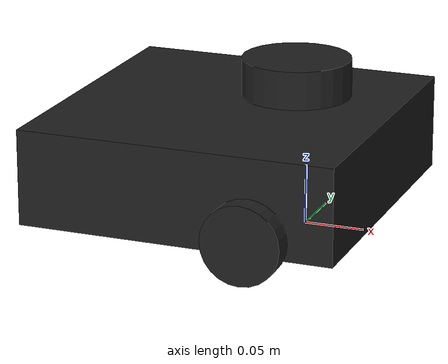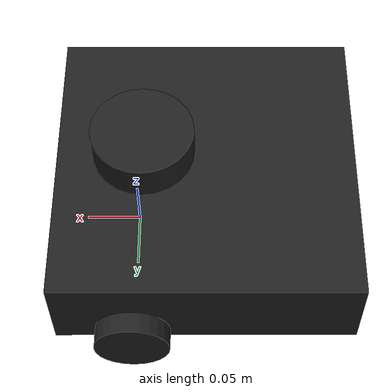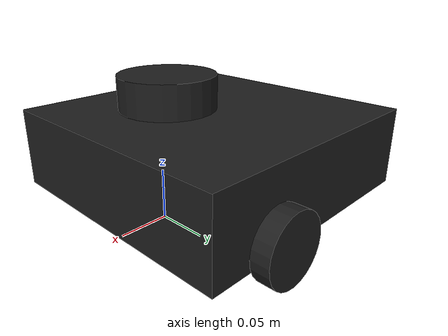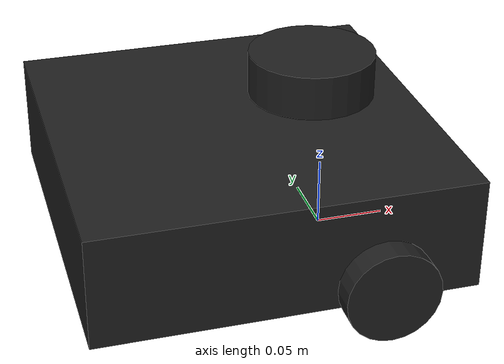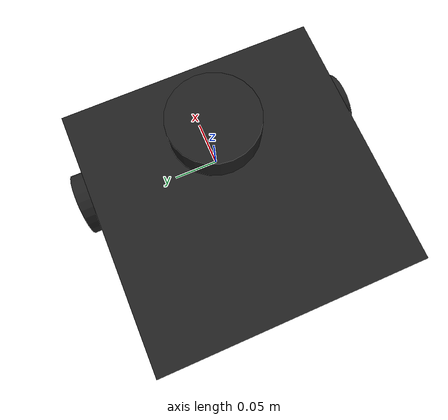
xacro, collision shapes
<?xml version="1.0" ?>
<robot name="turtlebot3_waffle_for_open_manipulator" xmlns:xacro="http://ros.org/wiki/xacro">
  <xacro:arg name="use_robot_name"    default="robot1"/>
  <xacro:property name="use_robot_name" value="$(arg use_robot_name)" />
  <xacro:include filename="$(find omtb_description)/turtlebot3_description/urdf/common_properties.xacro"/>
  <xacro:include filename="$(find omtb_description)/turtlebot3_description/urdf/turtlebot3_waffle.gazebo.xacro"/>

  <xacro:property name="r200_cam_rgb_px" value="0.005"/>
  <xacro:property name="r200_cam_rgb_py" value="0.018"/>
  <xacro:property name="r200_cam_rgb_pz" value="0.013"/>
  <xacro:property name="r200_cam_depth_offset" value="0.01"/>

  <link name="base_footprint"/>

  <joint name="base_joint" type="fixed">
    <parent link="base_footprint"/>
    <child link="base_link" />
    <origin xyz="0 0 0.010" rpy="0 0 0"/>
  </joint>

  <link name="base_link">
    <visual>
      <origin xyz="-0.064 0 0.0" rpy="0 0 0"/>
      <geometry>
        <mesh filename="package://omtb_description/turtlebot3_description/meshes/bases/waffle_base_for_open_manipulator.stl" scale="0.001 0.001 0.001"/>
      </geometry>
      <material name="light_black"/>
    </visual>

    <collision>
      <origin xyz="-0.064 0 0.047" rpy="0 0 0"/>
      <geometry>
        <box size="0.266 0.266 0.08"/>
      </geometry>
    </collision>

    <inertial>
      <origin xyz="0 0 0" rpy="0 0 0"/>
      <mass value="1.3729096e+01"/>

      <inertia ixx="1" ixy="0" ixz="0"
               iyy="1" iyz="0"
               izz="1" />
    </inertial>
  </link>

  <joint name="wheel_left_joint" type="continuous">
    <parent link="base_link"/>
    <child link="wheel_left_link"/>
    <origin xyz="0.0 0.144 0.023" rpy="-1.57 0 0"/>
    <axis xyz="0 0 1"/>
  </joint>

  <link name="wheel_left_link">
    <visual>
      <origin xyz="0 0 0" rpy="1.57 0 0"/>
      <geometry>
        <mesh filename="package://omtb_description/turtlebot3_description/meshes/wheels/left_tire.stl" scale="0.001 0.001 0.001"/>
      </geometry>
      <material name="dark"/>
    </visual>

    <collision>
      <origin xyz="0 0.001 0" rpy="0 0 0"/>
      <geometry>
        <cylinder length="0.018" radius="0.033"/>
      </geometry>
    </collision>

    <inertial>
      <origin xyz="0 0 0" />
      <mass value="0.2" />
      <inertia ixx="1.1175580e-05" ixy="-4.2369783e-11" ixz="-5.9381719e-09"
               iyy="1.1192413e-05" iyz="-1.4400107e-11"
               izz="2.0712558e-05" />
      </inertial>
  </link>

  <joint name="wheel_right_joint" type="continuous">
    <parent link="base_link"/>
    <child link="wheel_right_link"/>
    <origin xyz="0.0 -0.144 0.023" rpy="-1.57 0 0"/>
    <axis xyz="0 0 1"/>
  </joint>

  <link name="wheel_right_link">
    <visual>
      <origin xyz="0 0 0" rpy="1.57 0 0"/>
      <geometry>
        <mesh filename="package://omtb_description/turtlebot3_description/meshes/wheels/right_tire.stl" scale="0.001 0.001 0.001"/>
      </geometry>
      <material name="dark"/>
    </visual>

    <collision>
      <origin xyz="0 0.001 0" rpy="0 0 0"/>
      <geometry>
        <cylinder length="0.018" radius="0.033"/>
      </geometry>
    </collision>

    <inertial>
      <origin xyz="0 0 0" />
      <mass value="0.2" />
      <inertia ixx="1.1175580e-05" ixy="-4.2369783e-11" ixz="-5.9381719e-09"
               iyy="1.1192413e-05" iyz="-1.4400107e-11"
               izz="2.0712558e-05" />
      </inertial>
  </link>

  <joint name="caster_back_right_joint" type="fixed">
    <parent link="base_link"/>
    <child link="caster_back_right_link"/>
    <origin xyz="-0.177 -0.064 -0.004" rpy="-1.57 0 0"/>
  </joint>

  <link name="caster_back_right_link">

    <visual>
      <origin xyz="0 0.001 0" rpy="0 0 0"/>
      <geometry>
        <box size="0.030 0.009 0.020"/>
      </geometry>
      <material name="dark"/>
    </visual>

    <collision>
      <origin xyz="0 0.001 0" rpy="0 0 0"/>
      <geometry>
        <box size="0.030 0.009 0.020"/>
      </geometry>
    </collision>

    <inertial>
      <origin xyz="0 0 0" />
      <mass value="0.55" />
      <inertia ixx="0.001" ixy="0.0" ixz="0.0"
               iyy="0.001" iyz="0.0"
               izz="0.001" />
    </inertial>
  </link>

  <joint name="caster_back_left_joint" type="fixed">
    <parent link="base_link"/>
    <child link="caster_back_left_link"/>
    <origin xyz="-0.177 0.064 -0.004" rpy="-1.57 0 0"/>
  </joint>

  <link name="caster_back_left_link">
    <visual>
      <origin xyz="0 0.001 0" rpy="0 0 0"/>
      <geometry>
        <box size="0.030 0.009 0.020"/>
      </geometry>
      <material name="dark"/>
    </visual>

    <collision>
      <origin xyz="0 0.001 0" rpy="0 0 0"/>
      <geometry>
        <box size="0.030 0.009 0.020"/>
      </geometry>
    </collision>

    <inertial>
      <origin xyz="0 0 0" />
      <mass value="0.55" />
      <inertia ixx="0.001" ixy="0.0" ixz="0.0"
               iyy="0.001" iyz="0.0"
               izz="0.001" />
    </inertial>
  </link>

  <joint name="imu_joint" type="fixed">
    <parent link="base_link"/>
    <child link="imu_link"/>
    <origin xyz="0.0 0 0.068" rpy="0 0 0"/>
  </joint>

  <link name="imu_link"/>

  <joint name="scan_joint" type="fixed">
    <parent link="base_link"/>
    <child link="base_scan"/>
    <origin xyz="-0.024 0 0.122" rpy="0 0 0"/>
  </joint>

  <link name="base_scan">
    <visual>
      <origin xyz="0 0 0.0" rpy="0 0 0"/>
      <geometry>
        <mesh filename="package://omtb_description/turtlebot3_description/meshes/sensors/lds.stl" scale="0.001 0.001 0.001"/>
      </geometry>
      <material name="dark"/>
    </visual>

    <collision>
      <origin xyz="0.015 0 -0.0065" rpy="0 0 0"/>
      <geometry>
        <cylinder length="0.0315" radius="0.045"/>
      </geometry>
    </collision>

    <inertial>
      <mass value="0.1" />
      <origin xyz="0 0 0" />
      <inertia ixx="0.001" ixy="0.0" ixz="0.0"
               iyy="0.001" iyz="0.0"
               izz="0.001" />
    </inertial>
  </link>

  <joint name="scan_joint1" type="fixed">
    <parent link="base_link"/>
    <child link="base_scan1"/>
    <origin xyz="-0.024 0 0.122" rpy="0 0 0"/>
  </joint>
  <link name="base_scan1">
  </link>

  <joint name="camera_joint" type="fixed">
    <origin xyz="0.064 -0.065 0.094" rpy="0 0 0"/>
    <parent link="base_link"/>
    <child link="camera_link"/>
  </joint>

  <link name="camera_link">
  </link>

  <joint name="camera_rgb_joint" type="fixed">
    <origin xyz="${r200_cam_rgb_px} ${r200_cam_rgb_py} ${r200_cam_rgb_pz}" rpy="0 0 0"/>
    <parent link="camera_link"/>
    <child link="camera_rgb_frame"/>
  </joint>
  <link name="camera_rgb_frame"/>

  <joint name="camera_rgb_optical_joint" type="fixed">
    <origin xyz="0 0 0" rpy="-1.57 0 -1.57"/>
    <parent link="camera_rgb_frame"/>
    <child link="camera_rgb_optical_frame"/>
  </joint>
  <link name="camera_rgb_optical_frame"/>

  <joint name="camera_depth_joint" type="fixed">
    <origin xyz="${r200_cam_rgb_px} ${r200_cam_rgb_py + r200_cam_depth_offset} ${r200_cam_rgb_pz}" rpy="0 0 0"/>
    <parent link="camera_link"/>
    <child link="camera_depth_frame"/>
  </joint>
  <link name="camera_depth_frame"/>

  <joint name="camera_depth_optical_joint" type="fixed">
    <origin xyz="0 0 0" rpy="-1.57 0 -1.57"/>
    <parent link="camera_depth_frame"/>
    <child link="camera_depth_optical_frame"/>
  </joint>
  <link name="camera_depth_optical_frame"/>

  <joint name="stereo_camera_joint" type="fixed">
    <origin xyz="0 0 0" rpy="0 0 0"/>
    <parent link="camera_link"/>
    <child link="stereo_camera_frame"/>
  </joint>
  <link name="stereo_camera_frame"/>

  <joint name="stereo_camera_optical_joint" type="fixed">
    <origin xyz="0 0 0" rpy="-1.57 0 -1.57"/>
    <parent link="stereo_camera_frame"/>
    <child link="stereo_camera_optical_frame"/>
  </joint>
  <link name="stereo_camera_optical_frame"/>

</robot>
